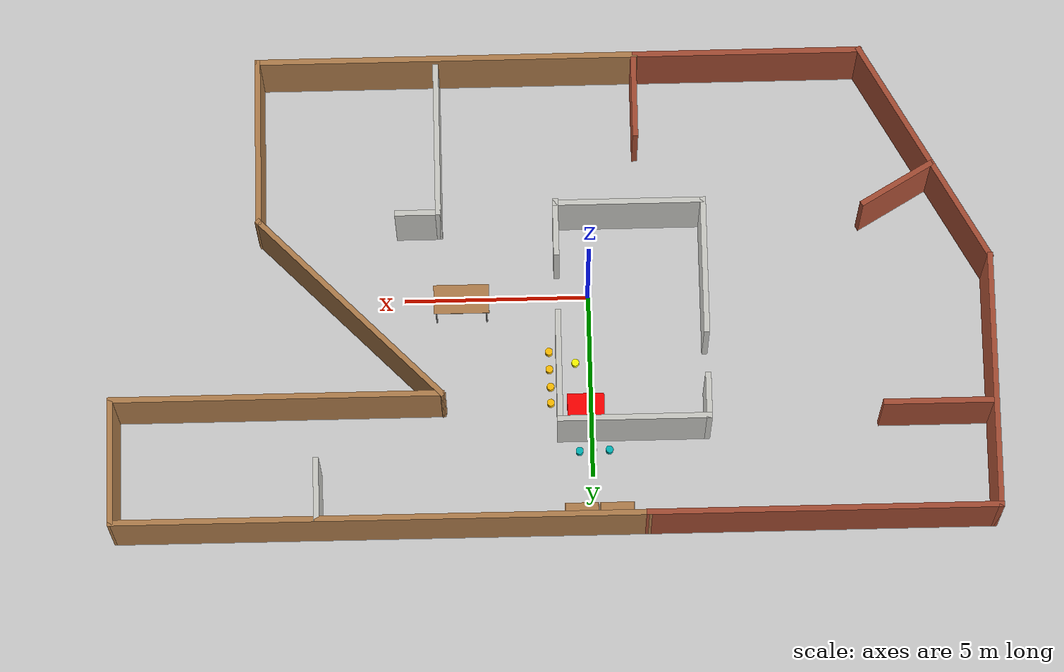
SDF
<sdf version="1.6">
 <world name="default">
  <model name="ground_plane">
   <static>1</static>
   <link name="link">
    <collision name="collision">
     <geometry><plane><normal>0 0 1</normal><size>100 100</size></plane></geometry>
     <surface>
      <contact><collide_bitmask>65535</collide_bitmask></contact>
      <friction><ode><mu>100</mu><mu2>50</mu2></ode></friction>
     </surface>
    </collision>
    <visual name="visual">
     <cast_shadows>0</cast_shadows>
     <geometry><plane><normal>0 0 1</normal><size>100 100</size></plane></geometry>
     <material>
      <script><uri>file://media/materials/scripts/gazebo.material</uri><name>Gazebo/Grey</name></script>
     </material>
    </visual>
   </link>
  </model>
  <model name="new_building_0">
   <pose>1.0207 0.182104 0 0 -0 0</pose>
   <link name="Wall_11">
    <collision name="Wall_11_Collision">
     <geometry><box><size>3.75 0.15 2.5</size></box></geometry>
     <pose>0 0 1.25 0 -0 0</pose>
    </collision>
    <visual name="Wall_11_Visual">
     <pose>0 0 1.25 0 -0 0</pose>
     <geometry><box><size>3.75 0.15 2.5</size></box></geometry>
     <material>
      <script><uri>file://media/materials/scripts/gazebo.material</uri><name>Gazebo/CeilingTiled</name></script>
      <ambient>0.996078 0.47451 0.0196078 1</ambient>
     </material>
     <meta><layer>0</layer></meta>
    </visual>
    <pose>-4.14163 -0.403047 0 0 -0 1.5708</pose>
   </link>
   <link name="Wall_14">
    <collision name="Wall_14_Collision">
     <geometry><box><size>3.5 0.15 2.5</size></box></geometry>
     <pose>0 0 1.25 0 -0 0</pose>
    </collision>
    <visual name="Wall_14_Visual">
     <pose>0 0 1.25 0 -0 0</pose>
     <geometry><box><size>3.5 0.15 2.5</size></box></geometry>
     <material>
      <script><uri>file://media/materials/scripts/gazebo.material</uri><name>Gazebo/Wood</name></script>
      <ambient>0 0 1 1</ambient>
     </material>
     <meta><layer>0</layer></meta>
    </visual>
    <pose>11.8417 4.67007 0 0 -0 -1.5708</pose>
   </link>
   <link name="Wall_15">
    <collision name="Wall_15_Collision">
     <geometry><box><size>9 0.15 2.5</size></box></geometry>
     <pose>0 0 1.25 0 -0 0</pose>
    </collision>
    <visual name="Wall_15_Visual">
     <pose>0 0 1.25 0 -0 0</pose>
     <geometry><box><size>9 0.15 2.5</size></box></geometry>
     <material>
      <script><uri>file://media/materials/scripts/gazebo.material</uri><name>Gazebo/Wood</name></script>
      <ambient>0 0 1 1</ambient>
     </material>
     <meta><layer>0</layer></meta>
    </visual>
    <pose>7.41668 2.99507 0 0 -0 3.14159</pose>
   </link>
   <link name="Wall_16">
    <collision name="Wall_16_Collision">
     <geometry><box><size>7 0.15 2.5</size></box></geometry>
     <pose>0 0 1.25 0 -0 0</pose>
    </collision>
    <visual name="Wall_16_Visual">
     <pose>0 0 1.25 0 -0 0</pose>
     <geometry><box><size>7 0.15 2.5</size></box></geometry>
     <material>
      <script><uri>file://media/materials/scripts/gazebo.material</uri><name>Gazebo/Wood</name></script>
      <ambient>0.435294 0.796078 0.67451 1</ambient>
     </material>
     <meta><layer>0</layer></meta>
    </visual>
    <pose>5.41352 0.573235 0 0 -0 -0.785398</pose>
   </link>
   <link name="Wall_17">
    <collision name="Wall_17_Collision">
     <geometry><box><size>4.64151 0.15 2.5</size></box></geometry>
     <pose>0 0 1.25 0 -0 0</pose>
    </collision>
    <visual name="Wall_17_Visual">
     <pose>0 0 1.25 0 -0 0</pose>
     <geometry><box><size>4.64151 0.15 2.5</size></box></geometry>
     <material>
      <script><uri>file://media/materials/scripts/gazebo.material</uri><name>Gazebo/Wood</name></script>
      <ambient>0.435294 0.796078 0.67451 1</ambient>
     </material>
     <meta><layer>0</layer></meta>
    </visual>
    <pose>7.83536 -4.09436 0 0 -0 -1.5708</pose>
   </link>
   <link name="Wall_19">
    <collision name="Wall_19_Collision">
     <geometry><box><size>6.87293 0.15 2.5</size></box></geometry>
     <pose>0 0 1.25 0 -0 0</pose>
    </collision>
    <visual name="Wall_19_Visual">
     <pose>0 0 1.25 0 -0 0</pose>
     <geometry><box><size>6.87293 0.15 2.5</size></box></geometry>
     <material>
      <script><uri>file://media/materials/scripts/gazebo.material</uri><name>Gazebo/Bricks</name></script>
      <ambient>0.921569 0.807843 0.615686 1</ambient>
     </material>
     <meta><layer>0</layer></meta>
    </visual>
    <pose>-10.1646 -3.41148 0 0 -0 2.08387</pose>
   </link>
   <link name="Wall_20">
    <collision name="Wall_20_Collision">
     <geometry><box><size>7 0.15 2.5</size></box></geometry>
     <pose>0 0 1.25 0 -0 0</pose>
    </collision>
    <visual name="Wall_20_Visual">
     <pose>0 0 1.25 0 -0 0</pose>
     <geometry><box><size>7 0.15 2.5</size></box></geometry>
     <material>
      <script><uri>file://media/materials/scripts/gazebo.material</uri><name>Gazebo/Bricks</name></script>
      <ambient>0.760784 0.662745 0.627451 1</ambient>
     </material>
     <meta><layer>0</layer></meta>
    </visual>
    <pose>-11.8146 2.94216 0 0 -0 1.5708</pose>
   </link>
   <link name="Wall_21">
    <collision name="Wall_21_Collision">
     <geometry><box><size>9.5 0.15 2.5</size></box></geometry>
     <pose>0 0 1.25 0 -0 0</pose>
    </collision>
    <visual name="Wall_21_Visual">
     <pose>0 0 1.25 0 -0 0</pose>
     <geometry><box><size>9.5 0.15 2.5</size></box></geometry>
     <material>
      <script><uri>file://media/materials/scripts/gazebo.material</uri><name>Gazebo/Bricks</name></script>
      <ambient>1 1 1 1</ambient>
     </material>
     <meta><layer>0</layer></meta>
    </visual>
    <pose>-7.13964 6.36716 0 0 -0 0</pose>
   </link>
   <link name="Wall_23">
    <collision name="Wall_23_Collision">
     <geometry><box><size>3 0.15 2.5</size></box></geometry>
     <pose>0 0 1.25 0 -0 0</pose>
    </collision>
    <visual name="Wall_23_Visual">
     <pose>0 0 1.25 0 -0 0</pose>
     <geometry><box><size>3 0.15 2.5</size></box></geometry>
     <material>
      <script><uri>file://media/materials/scripts/gazebo.material</uri><name>Gazebo/Bricks</name></script>
      <ambient>1 1 1 1</ambient>
     </material>
     <meta><layer>0</layer></meta>
    </visual>
    <pose>-10.291 3.51479 0 0 -0 0</pose>
   </link>
   <link name="Wall_25">
    <collision name="Wall_25_Collision">
     <geometry><box><size>2.25 0.15 2.5</size></box></geometry>
     <pose>0 0 1.25 0 -0 0</pose>
    </collision>
    <visual name="Wall_25_Visual">
     <pose>0 0 1.25 0 -0 0</pose>
     <geometry><box><size>2.25 0.15 2.5</size></box></geometry>
     <material>
      <script><uri>file://media/materials/scripts/gazebo.material</uri><name>Gazebo/Bricks</name></script>
      <ambient>1 1 1 1</ambient>
     </material>
     <meta><layer>0</layer></meta>
    </visual>
    <pose>-2.37608 -5.16665 0 0 -0 1.5708</pose>
   </link>
   <link name="Wall_28">
    <collision name="Wall_28_Collision">
     <geometry><box><size>2.25 0.15 2.5</size></box></geometry>
     <pose>0 0 1.25 0 -0 0</pose>
    </collision>
    <visual name="Wall_28_Visual">
     <pose>0 0 1.25 0 -0 0</pose>
     <geometry><box><size>2.25 0.15 2.5</size></box></geometry>
     <material>
      <script><uri>file://media/materials/scripts/gazebo.material</uri><name>Gazebo/Bricks</name></script>
      <ambient>1 1 1 1</ambient>
     </material>
     <meta><layer>0</layer></meta>
    </visual>
    <pose>-9.39155 -2.54061 0 0 -0 0.523599</pose>
   </link>
   <link name="Wall_3">
    <collision name="Wall_3_Collision">
     <geometry><box><size>4.13184 0.15 2.5</size></box></geometry>
     <pose>0 0 1.25 0 -0 0</pose>
    </collision>
    <visual name="Wall_3_Visual">
     <pose>0 0 1.25 0 -0 0</pose>
     <geometry><box><size>4.13184 0.15 2.5</size></box></geometry>
     <material>
      <script><uri>file://media/materials/scripts/gazebo.material</uri><name>Gazebo/CeilingTiled</name></script>
      <ambient>0.996078 0.47451 0.0196078 1</ambient>
     </material>
     <meta><layer>0</layer></meta>
    </visual>
    <pose>-2.15071 3.76645 0 0 -0 0</pose>
   </link>
   <link name="Wall_30">
    <collision name="Wall_30_Collision">
     <geometry><box><size>4.25 0.15 2.5</size></box></geometry>
     <pose>0 0 1.25 0 -0 0</pose>
    </collision>
    <visual name="Wall_30_Visual">
     <pose>0 0 1.25 0 -0 0</pose>
     <geometry><box><size>4.25 0.15 2.5</size></box></geometry>
     <material>
      <script><uri>file://media/materials/scripts/gazebo.material</uri><name>Gazebo/CeilingTiled</name></script>
      <ambient>0.760784 0.662745 0.627451 1</ambient>
     </material>
     <meta><layer>0</layer></meta>
    </visual>
    <pose>3.00145 -4.05817 0 0 -0 1.5708</pose>
   </link>
   <link name="Wall_31">
    <collision name="Wall_31_Collision">
     <geometry><box><size>1.25 0.15 2.5</size></box></geometry>
     <pose>0 0 1.25 0 -0 0</pose>
    </collision>
    <visual name="Wall_31_Visual">
     <pose>0 0 1.25 0 -0 0</pose>
     <geometry><box><size>1.25 0.15 2.5</size></box></geometry>
     <material>
      <script><uri>file://media/materials/scripts/gazebo.material</uri><name>Gazebo/CeilingTiled</name></script>
      <ambient>0.760784 0.662745 0.627451 1</ambient>
     </material>
     <meta><layer>0</layer></meta>
    </visual>
    <pose>3.55145 -2.00817 0 0 -0 0</pose>
   </link>
   <link name="Wall_33">
    <collision name="Wall_33_Collision">
     <geometry><box><size>1.75 0.15 2.5</size></box></geometry>
     <pose>0 0 1.25 0 -0 0</pose>
    </collision>
    <visual name="Wall_33_Visual">
     <pose>0 0 1.25 0 -0 0</pose>
     <geometry><box><size>1.75 0.15 2.5</size></box></geometry>
     <material>
      <script><uri>file://media/materials/scripts/gazebo.material</uri><name>Gazebo/CeilingTiled</name></script>
      <ambient>0 0 1 1</ambient>
     </material>
     <meta><layer>0</layer></meta>
    </visual>
    <pose>6.37467 5.54918 0 0 -0 -1.5708</pose>
   </link>
   <link name="Wall_37">
    <collision name="Wall_37_Collision">
     <geometry><box><size>14.4563 0.15 2.5</size></box></geometry>
     <pose>0 0 1.25 0 -0 0</pose>
    </collision>
    <visual name="Wall_37_Visual">
     <pose>0 0 1.25 0 -0 0</pose>
     <geometry><box><size>14.4563 0.15 2.5</size></box></geometry>
     <material>
      <script><uri>file://media/materials/scripts/gazebo.material</uri><name>Gazebo/Wood</name></script>
      <ambient>0 0 1 1</ambient>
     </material>
     <meta><layer>0</layer></meta>
    </visual>
    <pose>4.68852 6.35612 0 0 -0 3.14005</pose>
   </link>
   <link name="Wall_39">
    <collision name="Wall_39_Collision">
     <geometry><box><size>6.25 0.15 2.5</size></box></geometry>
     <pose>0 0 1.25 0 -0 0</pose>
    </collision>
    <visual name="Wall_39_Visual">
     <pose>0 0 1.25 0 -0 0</pose>
     <geometry><box><size>6.25 0.15 2.5</size></box></geometry>
     <material>
      <script><uri>file://media/materials/scripts/gazebo.material</uri><name>Gazebo/Bricks</name></script>
      <ambient>0.996078 0.47451 0.0196078 1</ambient>
     </material>
     <meta><layer>0</layer></meta>
    </visual>
    <pose>-5.46464 -6.34012 0 0 -0 0</pose>
   </link>
   <link name="Wall_4">
    <collision name="Wall_4_Collision">
     <geometry><box><size>3.0399 0.15 2.5</size></box></geometry>
     <pose>0 0 1.25 0 -0 0</pose>
    </collision>
    <visual name="Wall_4_Visual">
     <pose>0 0 1.25 0 -0 0</pose>
     <geometry><box><size>3.0399 0.15 2.5</size></box></geometry>
     <material>
      <script><uri>file://media/materials/scripts/gazebo.material</uri><name>Gazebo/CeilingTiled</name></script>
      <ambient>0.996078 0.47451 0.0196078 1</ambient>
     </material>
     <meta><layer>0</layer></meta>
    </visual>
    <pose>-0.159795 2.27498 0 0 -0 -1.5708</pose>
   </link>
   <link name="Wall_41">
    <collision name="Wall_41_Collision">
     <geometry><box><size>10.4 0.15 2.5</size></box></geometry>
     <pose>0 0 1.25 0 -0 0</pose>
    </collision>
    <visual name="Wall_41_Visual">
     <pose>0 0 1.25 0 -0 0</pose>
     <geometry><box><size>10.4 0.15 2.5</size></box></geometry>
     <material>
      <script><uri>file://media/materials/scripts/gazebo.material</uri><name>Gazebo/Wood</name></script>
      <ambient>0.435294 0.796078 0.67451 1</ambient>
     </material>
     <meta><layer>0</layer></meta>
    </visual>
    <pose>2.71036 -6.34012 0 0 -0 3.14159</pose>
   </link>
   <link name="Wall_6">
    <collision name="Wall_6_Collision">
     <geometry><box><size>4.13184 0.15 2.5</size></box></geometry>
     <pose>0 0 1.25 0 -0 0</pose>
    </collision>
    <visual name="Wall_6_Visual">
     <pose>0 0 1.25 0 -0 0</pose>
     <geometry><box><size>4.13184 0.15 2.5</size></box></geometry>
     <material>
      <script><uri>file://media/materials/scripts/gazebo.material</uri><name>Gazebo/CeilingTiled</name></script>
      <ambient>0.996078 0.47451 0.0196078 1</ambient>
     </material>
     <meta><layer>0</layer></meta>
    </visual>
    <pose>-2.15071 -2.20305 0 0 -0 0</pose>
   </link>
   <link name="Wall_7">
    <collision name="Wall_7_Collision">
     <geometry><box><size>1.5796 0.15 2.5</size></box></geometry>
     <pose>0 0 1.25 0 -0 0</pose>
    </collision>
    <visual name="Wall_7_Visual">
     <pose>0 0 1.25 0 -0 0</pose>
     <geometry><box><size>1.5796 0.15 2.5</size></box></geometry>
     <material>
      <script><uri>file://media/materials/scripts/gazebo.material</uri><name>Gazebo/CeilingTiled</name></script>
      <ambient>0.996078 0.47451 0.0196078 1</ambient>
     </material>
     <meta><layer>0</layer></meta>
    </visual>
    <pose>-0.159795 -1.53477 0 0 -0 1.5708</pose>
   </link>
   <link name="Wall_9">
    <collision name="Wall_9_Collision">
     <geometry><box><size>1.25 0.15 2.5</size></box></geometry>
     <pose>0 0 1.25 0 -0 0</pose>
    </collision>
    <visual name="Wall_9_Visual">
     <pose>0 0 1.25 0 -0 0</pose>
     <geometry><box><size>1.25 0.15 2.5</size></box></geometry>
     <material>
      <script><uri>file://media/materials/scripts/gazebo.material</uri><name>Gazebo/CeilingTiled</name></script>
      <ambient>0.996078 0.47451 0.0196078 1</ambient>
     </material>
     <meta><layer>0</layer></meta>
    </visual>
    <pose>-4.14163 3.21645 0 0 -0 -1.5708</pose>
   </link>
   <static>1</static>
  </model>
  <model name="red_box">
   <link name="link_0">
    <inertial>
     <mass>1</mass>
     <inertia>
      <ixx>0.166667</ixx>
      <ixy>0</ixy>
      <ixz>0</ixz>
      <iyy>0.166667</iyy>
      <iyz>0</iyz>
      <izz>0.166667</izz>
     </inertia>
    </inertial>
    <visual name="visual">
     <geometry><box><size>1 1 1</size></box></geometry>
     <material>
      <lighting>1</lighting>
      <script><uri>file://media/materials/scripts/gazebo.material</uri><name>Gazebo/Grey</name></script>
      <shader type="vertex"><normal_map>__default__</normal_map></shader>
      <ambient>1 0 0 1</ambient>
      <diffuse>1 0 0 1</diffuse>
      <specular>1 0 0 1</specular>
      <emissive>0 0 0 1</emissive>
     </material>
    </visual>
    <collision name="collision">
     <geometry><box><size>1 1 1</size></box></geometry>
     <surface>
      <friction>
       <ode><mu>1</mu><mu2>1</mu2><fdir1>0 0 0</fdir1><slip1>0</slip1><slip2>0</slip2></ode>
       <torsional>
        <coefficient>1</coefficient>
        <patch_radius>0</patch_radius>
        <surface_radius>0</surface_radius>
        <use_patch_radius>1</use_patch_radius>
        <ode><slip>0</slip></ode>
       </torsional>
      </friction>
      <bounce><restitution_coefficient>0</restitution_coefficient><threshold>1e+06</threshold></bounce>
      <contact>
       <collide_without_contact>0</collide_without_contact>
       <collide_without_contact_bitmask>1</collide_without_contact_bitmask>
       <collide_bitmask>1</collide_bitmask>
       <ode>
        <soft_cfm>0</soft_cfm>
        <soft_erp>0.2</soft_erp>
        <kp>1e+13</kp>
        <kd>1</kd>
        <max_vel>0.01</max_vel>
        <min_depth>0</min_depth>
       </ode>
       <bullet>
        <split_impulse>1</split_impulse>
        <split_impulse_penetration_threshold>-0.01</split_impulse_penetration_threshold>
        <soft_cfm>0</soft_cfm>
        <soft_erp>0.2</soft_erp>
        <kp>1e+13</kp>
        <kd>1</kd>
       </bullet>
      </contact>
     </surface>
    </collision>
   </link>
   <static>1</static>
   <pose>0.144471 3.2997 0 0 -0 0</pose>
  </model>
  <model name="bookshelf_2">
   <static>1</static>
   <link name="link">
    <inertial><mass>1</mass></inertial>
    <collision name="back">
     <pose>0 0.005 0.6 0 -0 0</pose>
     <geometry><box><size>0.9 0.01 1.2</size></box></geometry>
    </collision>
    <visual name="visual1">
     <pose>0 0.005 0.6 0 -0 0</pose>
     <geometry><box><size>0.9 0.01 1.2</size></box></geometry>
     <material>
      <script><uri>file://media/materials/scripts/gazebo.material</uri><name>Gazebo/Wood</name></script>
     </material>
    </visual>
    <collision name="left_side">
     <pose>0.45 -0.195 0.6 0 -0 0</pose>
     <geometry><box><size>0.02 0.4 1.2</size></box></geometry>
    </collision>
    <visual name="visual2">
     <pose>0.45 -0.195 0.6 0 -0 0</pose>
     <geometry><box><size>0.02 0.4 1.2</size></box></geometry>
     <material>
      <script><uri>file://media/materials/scripts/gazebo.material</uri><name>Gazebo/Wood</name></script>
     </material>
    </visual>
    <collision name="right_side">
     <pose>-0.45 -0.195 0.6 0 -0 0</pose>
     <geometry><box><size>0.02 0.4 1.2</size></box></geometry>
    </collision>
    <visual name="visual3">
     <pose>-0.45 -0.195 0.6 0 -0 0</pose>
     <geometry><box><size>0.02 0.4 1.2</size></box></geometry>
     <material>
      <script><uri>file://media/materials/scripts/gazebo.material</uri><name>Gazebo/Wood</name></script>
     </material>
    </visual>
    <collision name="bottom">
     <pose>0 -0.195 0.03 0 -0 0</pose>
     <geometry><box><size>0.88 0.4 0.06</size></box></geometry>
    </collision>
    <visual name="visual4">
     <pose>0 -0.195 0.03 0 -0 0</pose>
     <geometry><box><size>0.88 0.4 0.06</size></box></geometry>
     <material>
      <script><uri>file://media/materials/scripts/gazebo.material</uri><name>Gazebo/Wood</name></script>
     </material>
    </visual>
    <collision name="top">
     <pose>0 -0.195 1.19 0 -0 0</pose>
     <geometry><box><size>0.88 0.4 0.02</size></box></geometry>
    </collision>
    <visual name="visual5">
     <pose>0 -0.195 1.19 0 -0 0</pose>
     <geometry><box><size>0.88 0.4 0.02</size></box></geometry>
     <material>
      <script><uri>file://media/materials/scripts/gazebo.material</uri><name>Gazebo/Wood</name></script>
     </material>
    </visual>
    <collision name="low_shelf">
     <pose>0 -0.195 0.43 0 -0 0</pose>
     <geometry><box><size>0.88 0.4 0.02</size></box></geometry>
    </collision>
    <visual name="visual6">
     <pose>0 -0.195 0.43 0 -0 0</pose>
     <geometry><box><size>0.88 0.4 0.02</size></box></geometry>
     <material>
      <script><uri>file://media/materials/scripts/gazebo.material</uri><name>Gazebo/Wood</name></script>
     </material>
    </visual>
    <collision name="high_shelf">
     <pose>0 -0.195 0.8 0 -0 0</pose>
     <geometry><box><size>0.88 0.4 0.02</size></box></geometry>
    </collision>
    <visual name="visual7">
     <pose>0 -0.195 0.8 0 -0 0</pose>
     <geometry><box><size>0.88 0.4 0.02</size></box></geometry>
     <material>
      <script><uri>file://media/materials/scripts/gazebo.material</uri><name>Gazebo/Wood</name></script>
     </material>
    </visual>
   </link>
   <pose>-0.626023 6.3765 0 0 -0 0</pose>
  </model>
  <model name="bookshelf_3">
   <static>1</static>
   <link name="link">
    <inertial><mass>1</mass></inertial>
    <collision name="back">
     <pose>0 0.005 0.6 0 -0 0</pose>
     <geometry><box><size>0.9 0.01 1.2</size></box></geometry>
    </collision>
    <visual name="visual1">
     <pose>0 0.005 0.6 0 -0 0</pose>
     <geometry><box><size>0.9 0.01 1.2</size></box></geometry>
     <material>
      <script><uri>file://media/materials/scripts/gazebo.material</uri><name>Gazebo/Wood</name></script>
     </material>
    </visual>
    <collision name="left_side">
     <pose>0.45 -0.195 0.6 0 -0 0</pose>
     <geometry><box><size>0.02 0.4 1.2</size></box></geometry>
    </collision>
    <visual name="visual2">
     <pose>0.45 -0.195 0.6 0 -0 0</pose>
     <geometry><box><size>0.02 0.4 1.2</size></box></geometry>
     <material>
      <script><uri>file://media/materials/scripts/gazebo.material</uri><name>Gazebo/Wood</name></script>
     </material>
    </visual>
    <collision name="right_side">
     <pose>-0.45 -0.195 0.6 0 -0 0</pose>
     <geometry><box><size>0.02 0.4 1.2</size></box></geometry>
    </collision>
    <visual name="visual3">
     <pose>-0.45 -0.195 0.6 0 -0 0</pose>
     <geometry><box><size>0.02 0.4 1.2</size></box></geometry>
     <material>
      <script><uri>file://media/materials/scripts/gazebo.material</uri><name>Gazebo/Wood</name></script>
     </material>
    </visual>
    <collision name="bottom">
     <pose>0 -0.195 0.03 0 -0 0</pose>
     <geometry><box><size>0.88 0.4 0.06</size></box></geometry>
    </collision>
    <visual name="visual4">
     <pose>0 -0.195 0.03 0 -0 0</pose>
     <geometry><box><size>0.88 0.4 0.06</size></box></geometry>
     <material>
      <script><uri>file://media/materials/scripts/gazebo.material</uri><name>Gazebo/Wood</name></script>
     </material>
    </visual>
    <collision name="top">
     <pose>0 -0.195 1.19 0 -0 0</pose>
     <geometry><box><size>0.88 0.4 0.02</size></box></geometry>
    </collision>
    <visual name="visual5">
     <pose>0 -0.195 1.19 0 -0 0</pose>
     <geometry><box><size>0.88 0.4 0.02</size></box></geometry>
     <material>
      <script><uri>file://media/materials/scripts/gazebo.material</uri><name>Gazebo/Wood</name></script>
     </material>
    </visual>
    <collision name="low_shelf">
     <pose>0 -0.195 0.43 0 -0 0</pose>
     <geometry><box><size>0.88 0.4 0.02</size></box></geometry>
    </collision>
    <visual name="visual6">
     <pose>0 -0.195 0.43 0 -0 0</pose>
     <geometry><box><size>0.88 0.4 0.02</size></box></geometry>
     <material>
      <script><uri>file://media/materials/scripts/gazebo.material</uri><name>Gazebo/Wood</name></script>
     </material>
    </visual>
    <collision name="high_shelf">
     <pose>0 -0.195 0.8 0 -0 0</pose>
     <geometry><box><size>0.88 0.4 0.02</size></box></geometry>
    </collision>
    <visual name="visual7">
     <pose>0 -0.195 0.8 0 -0 0</pose>
     <geometry><box><size>0.88 0.4 0.02</size></box></geometry>
     <material>
      <script><uri>file://media/materials/scripts/gazebo.material</uri><name>Gazebo/Wood</name></script>
     </material>
    </visual>
   </link>
   <pose>0.326612 6.37372 0 0 -0 0</pose>
  </model>
  <model name="cylinder_b">
   <link name="link_0">
    <pose>0 0 0.1 0 -0 0</pose>
    <inertial>
     <mass>1</mass>
     <inertia><ixx>0.145833</ixx><ixy>0</ixy><ixz>0</ixz><iyy>0.145833</iyy><iyz>0</iyz><izz>0.125</izz></inertia>
    </inertial>
    <visual name="visual">
     <geometry><cylinder><radius>0.1</radius><length>0.2</length></cylinder></geometry>
     <material>
      <lighting>1</lighting>
      <script><uri>file://media/materials/scripts/gazebo.material</uri><name>Gazebo/Grey</name></script>
      <ambient>0 0 1 1</ambient>
      <diffuse>0 0 1 1</diffuse>
      <specular>0 0 0 1</specular>
      <emissive>0 0 0 1</emissive>
      <shader type="vertex"><normal_map>__default__</normal_map></shader>
     </material>
    </visual>
    <collision name="collision">
     <geometry><cylinder><radius>0.1</radius><length>0.2</length></cylinder></geometry>
     <surface>
      <friction>
       <ode><mu>1</mu><mu2>1</mu2><fdir1>0 0 0</fdir1><slip1>0</slip1><slip2>0</slip2></ode>
       <torsional>
        <coefficient>1</coefficient>
        <patch_radius>0</patch_radius>
        <surface_radius>0</surface_radius>
        <use_patch_radius>1</use_patch_radius>
        <ode><slip>0</slip></ode>
       </torsional>
      </friction>
      <bounce><restitution_coefficient>0</restitution_coefficient><threshold>1e+06</threshold></bounce>
      <contact>
       <collide_without_contact>0</collide_without_contact>
       <collide_without_contact_bitmask>1</collide_without_contact_bitmask>
       <collide_bitmask>1</collide_bitmask>
       <ode>
        <soft_cfm>0</soft_cfm>
        <soft_erp>0.2</soft_erp>
        <kp>1e+13</kp>
        <kd>1</kd>
        <max_vel>0.01</max_vel>
        <min_depth>0</min_depth>
       </ode>
       <bullet>
        <split_impulse>1</split_impulse>
        <split_impulse_penetration_threshold>-0.01</split_impulse_penetration_threshold>
        <soft_cfm>0</soft_cfm>
        <soft_erp>0.2</soft_erp>
        <kp>1e+13</kp>
        <kd>1</kd>
       </bullet>
      </contact>
     </surface>
    </collision>
   </link>
   <static>1</static>
   <pose>3.70408 6.3635 0 0 -0 0</pose>
  </model>
  <model name="cylinder_y_6">
   <link name="link_0">
    <pose>0 0 0.1 0 -0 0</pose>
    <inertial>
     <mass>1</mass>
     <inertia><ixx>0.145833</ixx><ixy>0</ixy><ixz>0</ixz><iyy>0.145833</iyy><iyz>0</iyz><izz>0.125</izz></inertia>
    </inertial>
    <visual name="visual">
     <geometry><cylinder><radius>0.1</radius><length>0.2</length></cylinder></geometry>
     <material>
      <lighting>1</lighting>
      <script><uri>file://media/materials/scripts/gazebo.material</uri><name>Gazebo/Grey</name></script>
      <ambient>1 1 0 1</ambient>
      <diffuse>1 1 0 1</diffuse>
      <specular>0 0 0 1</specular>
      <emissive>0 0 0 1</emissive>
      <shader type="vertex"><normal_map>__default__</normal_map></shader>
     </material>
    </visual>
    <collision name="collision">
     <geometry><cylinder><radius>0.1</radius><length>0.2</length></cylinder></geometry>
     <surface>
      <friction>
       <ode><mu>1</mu><mu2>1</mu2><fdir1>0 0 0</fdir1><slip1>0</slip1><slip2>0</slip2></ode>
       <torsional>
        <coefficient>1</coefficient>
        <patch_radius>0</patch_radius>
        <surface_radius>0</surface_radius>
        <use_patch_radius>1</use_patch_radius>
        <ode><slip>0</slip></ode>
       </torsional>
      </friction>
      <bounce><restitution_coefficient>0</restitution_coefficient><threshold>1e+06</threshold></bounce>
      <contact>
       <collide_without_contact>0</collide_without_contact>
       <collide_without_contact_bitmask>1</collide_without_contact_bitmask>
       <collide_bitmask>1</collide_bitmask>
       <ode>
        <soft_cfm>0</soft_cfm>
        <soft_erp>0.2</soft_erp>
        <kp>1e+13</kp>
        <kd>1</kd>
        <max_vel>0.01</max_vel>
        <min_depth>0</min_depth>
       </ode>
       <bullet>
        <split_impulse>1</split_impulse>
        <split_impulse_penetration_threshold>-0.01</split_impulse_penetration_threshold>
        <soft_cfm>0</soft_cfm>
        <soft_erp>0.2</soft_erp>
        <kp>1e+13</kp>
        <kd>1</kd>
       </bullet>
      </contact>
     </surface>
    </collision>
   </link>
   <static>1</static>
   <pose>0.400742 1.85814 0 0 -0 0</pose>
  </model>
  <model name="cylinder_g_1">
   <link name="link_0">
    <pose>0 0 0.1 0 -0 0</pose>
    <inertial>
     <mass>1</mass>
     <inertia><ixx>0.145833</ixx><ixy>0</ixy><ixz>0</ixz><iyy>0.145833</iyy><iyz>0</iyz><izz>0.125</izz></inertia>
    </inertial>
    <visual name="visual">
     <geometry><cylinder><radius>0.1</radius><length>0.2</length></cylinder></geometry>
     <material>
      <lighting>1</lighting>
      <script><uri>file://media/materials/scripts/gazebo.material</uri><name>Gazebo/Grey</name></script>
      <ambient>0 1 0 1</ambient>
      <diffuse>0 1 0 1</diffuse>
      <specular>0 0 0 1</specular>
      <emissive>0 0 0 1</emissive>
      <shader type="vertex"><normal_map>__default__</normal_map></shader>
     </material>
    </visual>
    <collision name="collision">
     <geometry><cylinder><radius>0.1</radius><length>0.2</length></cylinder></geometry>
     <surface>
      <friction>
       <ode><mu>1</mu><mu2>1</mu2><fdir1>0 0 0</fdir1><slip1>0</slip1><slip2>0</slip2></ode>
       <torsional>
        <coefficient>1</coefficient>
        <patch_radius>0</patch_radius>
        <surface_radius>0</surface_radius>
        <use_patch_radius>1</use_patch_radius>
        <ode><slip>0</slip></ode>
       </torsional>
      </friction>
      <bounce><restitution_coefficient>0</restitution_coefficient><threshold>1e+06</threshold></bounce>
      <contact>
       <collide_without_contact>0</collide_without_contact>
       <collide_without_contact_bitmask>1</collide_without_contact_bitmask>
       <collide_bitmask>1</collide_bitmask>
       <ode>
        <soft_cfm>0</soft_cfm>
        <soft_erp>0.2</soft_erp>
        <kp>1e+13</kp>
        <kd>1</kd>
        <max_vel>0.01</max_vel>
        <min_depth>0</min_depth>
       </ode>
       <bullet>
        <split_impulse>1</split_impulse>
        <split_impulse_penetration_threshold>-0.01</split_impulse_penetration_threshold>
        <soft_cfm>0</soft_cfm>
        <soft_erp>0.2</soft_erp>
        <kp>1e+13</kp>
        <kd>1</kd>
       </bullet>
      </contact>
     </surface>
    </collision>
   </link>
   <static>1</static>
   <pose>-0.841368 3.72866 0 0 -0 0</pose>
  </model>
  <model name="cylinder_bg_3">
   <link name="link_0">
    <pose>0 0 0.1 0 -0 0</pose>
    <inertial>
     <mass>1</mass>
     <inertia><ixx>0.145833</ixx><ixy>0</ixy><ixz>0</ixz><iyy>0.145833</iyy><iyz>0</iyz><izz>0.125</izz></inertia>
    </inertial>
    <visual name="visual">
     <geometry><cylinder><radius>0.1</radius><length>0.2</length></cylinder></geometry>
     <material>
      <lighting>1</lighting>
      <script><uri>file://media/materials/scripts/gazebo.material</uri><name>Gazebo/Grey</name></script>
      <ambient>0 0.71 0.722 1</ambient>
      <diffuse>0 0.71 0.722 1</diffuse>
      <specular>0 0 0 1</specular>
      <emissive>0 0 0 1</emissive>
      <shader type="vertex"><normal_map>__default__</normal_map></shader>
     </material>
    </visual>
    <collision name="collision">
     <geometry><cylinder><radius>0.1</radius><length>0.2</length></cylinder></geometry>
     <surface>
      <friction>
       <ode><mu>1</mu><mu2>1</mu2><fdir1>0 0 0</fdir1><slip1>0</slip1><slip2>0</slip2></ode>
       <torsional>
        <coefficient>1</coefficient>
        <patch_radius>0</patch_radius>
        <surface_radius>0</surface_radius>
        <use_patch_radius>1</use_patch_radius>
        <ode><slip>0</slip></ode>
       </torsional>
      </friction>
      <bounce><restitution_coefficient>0</restitution_coefficient><threshold>1e+06</threshold></bounce>
      <contact>
       <collide_without_contact>0</collide_without_contact>
       <collide_without_contact_bitmask>1</collide_without_contact_bitmask>
       <collide_bitmask>1</collide_bitmask>
       <ode>
        <soft_cfm>0</soft_cfm>
        <soft_erp>0.2</soft_erp>
        <kp>1e+13</kp>
        <kd>1</kd>
        <max_vel>0.01</max_vel>
        <min_depth>0</min_depth>
       </ode>
       <bullet>
        <split_impulse>1</split_impulse>
        <split_impulse_penetration_threshold>-0.01</split_impulse_penetration_threshold>
        <soft_cfm>0</soft_cfm>
        <soft_erp>0.2</soft_erp>
        <kp>1e+13</kp>
        <kd>1</kd>
       </bullet>
      </contact>
     </surface>
    </collision>
   </link>
   <static>1</static>
   <pose>0.340892 4.32087 0 0 -0 0</pose>
  </model>
  <model name="cylinder_bg_4">
   <link name="link_0">
    <pose>0 0 0.1 0 -0 0</pose>
    <inertial>
     <mass>1</mass>
     <inertia><ixx>0.145833</ixx><ixy>0</ixy><ixz>0</ixz><iyy>0.145833</iyy><iyz>0</iyz><izz>0.125</izz></inertia>
    </inertial>
    <visual name="visual">
     <geometry><cylinder><radius>0.1</radius><length>0.2</length></cylinder></geometry>
     <material>
      <lighting>1</lighting>
      <script><uri>file://media/materials/scripts/gazebo.material</uri><name>Gazebo/Grey</name></script>
      <ambient>0 0.71 0.722 1</ambient>
      <diffuse>0 0.71 0.722 1</diffuse>
      <specular>0 0 0 1</specular>
      <emissive>0 0 0 1</emissive>
      <shader type="vertex"><normal_map>__default__</normal_map></shader>
     </material>
    </visual>
    <collision name="collision">
     <geometry><cylinder><radius>0.1</radius><length>0.2</length></cylinder></geometry>
     <surface>
      <friction>
       <ode><mu>1</mu><mu2>1</mu2><fdir1>0 0 0</fdir1><slip1>0</slip1><slip2>0</slip2></ode>
       <torsional>
        <coefficient>1</coefficient>
        <patch_radius>0</patch_radius>
        <surface_radius>0</surface_radius>
        <use_patch_radius>1</use_patch_radius>
        <ode><slip>0</slip></ode>
       </torsional>
      </friction>
      <bounce><restitution_coefficient>0</restitution_coefficient><threshold>1e+06</threshold></bounce>
      <contact>
       <collide_without_contact>0</collide_without_contact>
       <collide_without_contact_bitmask>1</collide_without_contact_bitmask>
       <collide_bitmask>1</collide_bitmask>
       <ode>
        <soft_cfm>0</soft_cfm>
        <soft_erp>0.2</soft_erp>
        <kp>1e+13</kp>
        <kd>1</kd>
        <max_vel>0.01</max_vel>
        <min_depth>0</min_depth>
       </ode>
       <bullet>
        <split_impulse>1</split_impulse>
        <split_impulse_penetration_threshold>-0.01</split_impulse_penetration_threshold>
        <soft_cfm>0</soft_cfm>
        <soft_erp>0.2</soft_erp>
        <kp>1e+13</kp>
        <kd>1</kd>
       </bullet>
      </contact>
     </surface>
    </collision>
   </link>
   <static>1</static>
   <pose>-0.013523 4.29259 0 0 -0 0</pose>
  </model>
  <model name="cylinder_bg_5">
   <link name="link_0">
    <pose>0 0 0.1 0 -0 0</pose>
    <inertial>
     <mass>1</mass>
     <inertia><ixx>0.145833</ixx><ixy>0</ixy><ixz>0</ixz><iyy>0.145833</iyy><iyz>0</iyz><izz>0.125</izz></inertia>
    </inertial>
    <visual name="visual">
     <geometry><cylinder><radius>0.1</radius><length>0.2</length></cylinder></geometry>
     <material>
      <lighting>1</lighting>
      <script><uri>file://media/materials/scripts/gazebo.material</uri><name>Gazebo/Grey</name></script>
      <ambient>0 0.71 0.722 1</ambient>
      <diffuse>0 0.71 0.722 1</diffuse>
      <specular>0 0 0 1</specular>
      <emissive>0 0 0 1</emissive>
      <shader type="vertex"><normal_map>__default__</normal_map></shader>
     </material>
    </visual>
    <collision name="collision">
     <geometry><cylinder><radius>0.1</radius><length>0.2</length></cylinder></geometry>
     <surface>
      <friction>
       <ode><mu>1</mu><mu2>1</mu2><fdir1>0 0 0</fdir1><slip1>0</slip1><slip2>0</slip2></ode>
       <torsional>
        <coefficient>1</coefficient>
        <patch_radius>0</patch_radius>
        <surface_radius>0</surface_radius>
        <use_patch_radius>1</use_patch_radius>
        <ode><slip>0</slip></ode>
       </torsional>
      </friction>
      <bounce><restitution_coefficient>0</restitution_coefficient><threshold>1e+06</threshold></bounce>
      <contact>
       <collide_without_contact>0</collide_without_contact>
       <collide_without_contact_bitmask>1</collide_without_contact_bitmask>
       <collide_bitmask>1</collide_bitmask>
       <ode>
        <soft_cfm>0</soft_cfm>
        <soft_erp>0.2</soft_erp>
        <kp>1e+13</kp>
        <kd>1</kd>
        <max_vel>0.01</max_vel>
        <min_depth>0</min_depth>
       </ode>
       <bullet>
        <split_impulse>1</split_impulse>
        <split_impulse_penetration_threshold>-0.01</split_impulse_penetration_threshold>
        <soft_cfm>0</soft_cfm>
        <soft_erp>0.2</soft_erp>
        <kp>1e+13</kp>
        <kd>1</kd>
       </bullet>
      </contact>
     </surface>
    </collision>
   </link>
   <static>1</static>
   <pose>-0.471134 4.29885 0 0 -0 0</pose>
  </model>
  <model name="cylinder_yo_3">
   <link name="link_0">
    <pose>0 0 0.1 0 -0 0</pose>
    <inertial>
     <mass>1</mass>
     <inertia><ixx>0.145833</ixx><ixy>0</ixy><ixz>0</ixz><iyy>0.145833</iyy><iyz>0</iyz><izz>0.125</izz></inertia>
    </inertial>
    <visual name="visual">
     <geometry><cylinder><radius>0.1</radius><length>0.2</length></cylinder></geometry>
     <material>
      <lighting>1</lighting>
      <script><uri>file://media/materials/scripts/gazebo.material</uri><name>Gazebo/Grey</name></script>
      <ambient>1 0.749 0 1</ambient>
      <diffuse>1 0.749 0 1</diffuse>
      <specular>0 0 0 1</specular>
      <emissive>0 0 0 1</emissive>
      <shader type="vertex"><normal_map>__default__</normal_map></shader>
     </material>
    </visual>
    <collision name="collision">
     <geometry><cylinder><radius>0.1</radius><length>0.2</length></cylinder></geometry>
     <surface>
      <friction>
       <ode><mu>1</mu><mu2>1</mu2><fdir1>0 0 0</fdir1><slip1>0</slip1><slip2>0</slip2></ode>
       <torsional>
        <coefficient>1</coefficient>
        <patch_radius>0</patch_radius>
        <surface_radius>0</surface_radius>
        <use_patch_radius>1</use_patch_radius>
        <ode><slip>0</slip></ode>
       </torsional>
      </friction>
      <bounce><restitution_coefficient>0</restitution_coefficient><threshold>1e+06</threshold></bounce>
      <contact>
       <collide_without_contact>0</collide_without_contact>
       <collide_without_contact_bitmask>1</collide_without_contact_bitmask>
       <collide_bitmask>1</collide_bitmask>
       <ode>
        <soft_cfm>0</soft_cfm>
        <soft_erp>0.2</soft_erp>
        <kp>1e+13</kp>
        <kd>1</kd>
        <max_vel>0.01</max_vel>
        <min_depth>0</min_depth>
       </ode>
       <bullet>
        <split_impulse>1</split_impulse>
        <split_impulse_penetration_threshold>-0.01</split_impulse_penetration_threshold>
        <soft_cfm>0</soft_cfm>
        <soft_erp>0.2</soft_erp>
        <kp>1e+13</kp>
        <kd>1</kd>
       </bullet>
      </contact>
     </surface>
    </collision>
   </link>
   <static>1</static>
   <pose>1.0871 2.51402 0 0 -0 0</pose>
  </model>
  <model name="cylinder_yo_4">
   <link name="link_0">
    <pose>0 0 0.1 0 -0 0</pose>
    <inertial>
     <mass>1</mass>
     <inertia><ixx>0.145833</ixx><ixy>0</ixy><ixz>0</ixz><iyy>0.145833</iyy><iyz>0</iyz><izz>0.125</izz></inertia>
    </inertial>
    <visual name="visual">
     <geometry><cylinder><radius>0.1</radius><length>0.2</length></cylinder></geometry>
     <material>
      <lighting>1</lighting>
      <script><uri>file://media/materials/scripts/gazebo.material</uri><name>Gazebo/Grey</name></script>
      <ambient>1 0.749 0 1</ambient>
      <diffuse>1 0.749 0 1</diffuse>
      <specular>0 0 0 1</specular>
      <emissive>0 0 0 1</emissive>
      <shader type="vertex"><normal_map>__default__</normal_map></shader>
     </material>
    </visual>
    <collision name="collision">
     <geometry><cylinder><radius>0.1</radius><length>0.2</length></cylinder></geometry>
     <surface>
      <friction>
       <ode><mu>1</mu><mu2>1</mu2><fdir1>0 0 0</fdir1><slip1>0</slip1><slip2>0</slip2></ode>
       <torsional>
        <coefficient>1</coefficient>
        <patch_radius>0</patch_radius>
        <surface_radius>0</surface_radius>
        <use_patch_radius>1</use_patch_radius>
        <ode><slip>0</slip></ode>
       </torsional>
      </friction>
      <bounce><restitution_coefficient>0</restitution_coefficient><threshold>1e+06</threshold></bounce>
      <contact>
       <collide_without_contact>0</collide_without_contact>
       <collide_without_contact_bitmask>1</collide_without_contact_bitmask>
       <collide_bitmask>1</collide_bitmask>
       <ode>
        <soft_cfm>0</soft_cfm>
        <soft_erp>0.2</soft_erp>
        <kp>1e+13</kp>
        <kd>1</kd>
        <max_vel>0.01</max_vel>
        <min_depth>0</min_depth>
       </ode>
       <bullet>
        <split_impulse>1</split_impulse>
        <split_impulse_penetration_threshold>-0.01</split_impulse_penetration_threshold>
        <soft_cfm>0</soft_cfm>
        <soft_erp>0.2</soft_erp>
        <kp>1e+13</kp>
        <kd>1</kd>
       </bullet>
      </contact>
     </surface>
    </collision>
   </link>
   <static>1</static>
   <pose>1.08914 2.96269 0 0 -0 0</pose>
  </model>
  <model name="cylinder_yo_5">
   <link name="link_0">
    <pose>0 0 0.1 0 -0 0</pose>
    <inertial>
     <mass>1</mass>
     <inertia><ixx>0.145833</ixx><ixy>0</ixy><ixz>0</ixz><iyy>0.145833</iyy><iyz>0</iyz><izz>0.125</izz></inertia>
    </inertial>
    <visual name="visual">
     <geometry><cylinder><radius>0.1</radius><length>0.2</length></cylinder></geometry>
     <material>
      <lighting>1</lighting>
      <script><uri>file://media/materials/scripts/gazebo.material</uri><name>Gazebo/Grey</name></script>
      <ambient>1 0.749 0 1</ambient>
      <diffuse>1 0.749 0 1</diffuse>
      <specular>0 0 0 1</specular>
      <emissive>0 0 0 1</emissive>
      <shader type="vertex"><normal_map>__default__</normal_map></shader>
     </material>
    </visual>
    <collision name="collision">
     <geometry><cylinder><radius>0.1</radius><length>0.2</length></cylinder></geometry>
     <surface>
      <friction>
       <ode><mu>1</mu><mu2>1</mu2><fdir1>0 0 0</fdir1><slip1>0</slip1><slip2>0</slip2></ode>
       <torsional>
        <coefficient>1</coefficient>
        <patch_radius>0</patch_radius>
        <surface_radius>0</surface_radius>
        <use_patch_radius>1</use_patch_radius>
        <ode><slip>0</slip></ode>
       </torsional>
      </friction>
      <bounce><restitution_coefficient>0</restitution_coefficient><threshold>1e+06</threshold></bounce>
      <contact>
       <collide_without_contact>0</collide_without_contact>
       <collide_without_contact_bitmask>1</collide_without_contact_bitmask>
       <collide_bitmask>1</collide_bitmask>
       <ode>
        <soft_cfm>0</soft_cfm>
        <soft_erp>0.2</soft_erp>
        <kp>1e+13</kp>
        <kd>1</kd>
        <max_vel>0.01</max_vel>
        <min_depth>0</min_depth>
       </ode>
       <bullet>
        <split_impulse>1</split_impulse>
        <split_impulse_penetration_threshold>-0.01</split_impulse_penetration_threshold>
        <soft_cfm>0</soft_cfm>
        <soft_erp>0.2</soft_erp>
        <kp>1e+13</kp>
        <kd>1</kd>
       </bullet>
      </contact>
     </surface>
    </collision>
   </link>
   <static>1</static>
   <pose>1.10971 2.02512 0 0 -0 0</pose>
  </model>
  <model name="cylinder_yo_6">
   <link name="link_0">
    <pose>0 0 0.1 0 -0 0</pose>
    <inertial>
     <mass>1</mass>
     <inertia><ixx>0.145833</ixx><ixy>0</ixy><ixz>0</ixz><iyy>0.145833</iyy><iyz>0</iyz><izz>0.125</izz></inertia>
    </inertial>
    <visual name="visual">
     <geometry><cylinder><radius>0.1</radius><length>0.2</length></cylinder></geometry>
     <material>
      <lighting>1</lighting>
      <script><uri>file://media/materials/scripts/gazebo.material</uri><name>Gazebo/Grey</name></script>
      <ambient>1 0.749 0 1</ambient>
      <diffuse>1 0.749 0 1</diffuse>
      <specular>0 0 0 1</specular>
      <emissive>0 0 0 1</emissive>
      <shader type="vertex"><normal_map>__default__</normal_map></shader>
     </material>
    </visual>
    <collision name="collision">
     <geometry><cylinder><radius>0.1</radius><length>0.2</length></cylinder></geometry>
     <surface>
      <friction>
       <ode><mu>1</mu><mu2>1</mu2><fdir1>0 0 0</fdir1><slip1>0</slip1><slip2>0</slip2></ode>
       <torsional>
        <coefficient>1</coefficient>
        <patch_radius>0</patch_radius>
        <surface_radius>0</surface_radius>
        <use_patch_radius>1</use_patch_radius>
        <ode><slip>0</slip></ode>
       </torsional>
      </friction>
      <bounce><restitution_coefficient>0</restitution_coefficient><threshold>1e+06</threshold></bounce>
      <contact>
       <collide_without_contact>0</collide_without_contact>
       <collide_without_contact_bitmask>1</collide_without_contact_bitmask>
       <collide_bitmask>1</collide_bitmask>
       <ode>
        <soft_cfm>0</soft_cfm>
        <soft_erp>0.2</soft_erp>
        <kp>1e+13</kp>
        <kd>1</kd>
        <max_vel>0.01</max_vel>
        <min_depth>0</min_depth>
       </ode>
       <bullet>
        <split_impulse>1</split_impulse>
        <split_impulse_penetration_threshold>-0.01</split_impulse_penetration_threshold>
        <soft_cfm>0</soft_cfm>
        <soft_erp>0.2</soft_erp>
        <kp>1e+13</kp>
        <kd>1</kd>
       </bullet>
      </contact>
     </surface>
    </collision>
   </link>
   <static>1</static>
   <pose>1.10991 1.53472 0 0 -0 0</pose>
  </model>
  <model name="table">
   <static>1</static>
   <link name="link">
    <collision name="surface">
     <pose>0 0 1 0 -0 0</pose>
     <geometry><box><size>1.5 0.8 0.03</size></box></geometry>
     <surface><friction><ode><mu>0.6</mu><mu2>0.6</mu2></ode></friction></surface>
    </collision>
    <visual name="visual1">
     <pose>0 0 1 0 -0 0</pose>
     <geometry><box><size>1.5 0.8 0.03</size></box></geometry>
     <material>
      <script><uri>file://media/materials/scripts/gazebo.material</uri><name>Gazebo/Wood</name></script>
     </material>
    </visual>
    <collision name="front_left_leg">
     <pose>0.68 0.38 0.5 0 -0 0</pose>
     <geometry><cylinder><radius>0.02</radius><length>1</length></cylinder></geometry>
    </collision>
    <visual name="front_left_leg">
     <pose>0.68 0.38 0.5 0 -0 0</pose>
     <geometry><cylinder><radius>0.02</radius><length>1</length></cylinder></geometry>
     <material>
      <script><uri>file://media/materials/scripts/gazebo.material</uri><name>Gazebo/Grey</name></script>
     </material>
    </visual>
    <collision name="front_right_leg">
     <pose>0.68 -0.38 0.5 0 -0 0</pose>
     <geometry><cylinder><radius>0.02</radius><length>1</length></cylinder></geometry>
    </collision>
    <visual name="front_right_leg">
     <pose>0.68 -0.38 0.5 0 -0 0</pose>
     <geometry><cylinder><radius>0.02</radius><length>1</length></cylinder></geometry>
     <material>
      <script><uri>file://media/materials/scripts/gazebo.material</uri><name>Gazebo/Grey</name></script>
     </material>
    </visual>
    <collision name="back_right_leg">
     <pose>-0.68 -0.38 0.5 0 -0 0</pose>
     <geometry><cylinder><radius>0.02</radius><length>1</length></cylinder></geometry>
    </collision>
    <visual name="back_right_leg">
     <pose>-0.68 -0.38 0.5 0 -0 0</pose>
     <geometry><cylinder><radius>0.02</radius><length>1</length></cylinder></geometry>
     <material>
      <script><uri>file://media/materials/scripts/gazebo.material</uri><name>Gazebo/Grey</name></script>
     </material>
    </visual>
    <collision name="back_left_leg">
     <pose>-0.68 0.38 0.5 0 -0 0</pose>
     <geometry><cylinder><radius>0.02</radius><length>1</length></cylinder></geometry>
    </collision>
    <visual name="back_left_leg">
     <pose>-0.68 0.38 0.5 0 -0 0</pose>
     <geometry><cylinder><radius>0.02</radius><length>1</length></cylinder></geometry>
     <material>
      <script><uri>file://media/materials/scripts/gazebo.material</uri><name>Gazebo/Grey</name></script>
     </material>
    </visual>
   </link>
   <pose>3.45727 0.219339 0 0 -0 0</pose>
  </model>
 </world>
</sdf>
